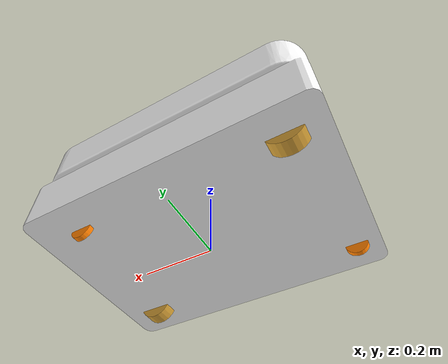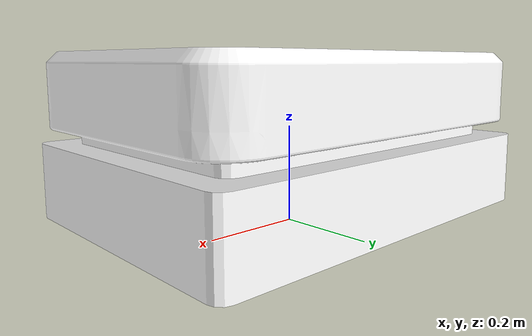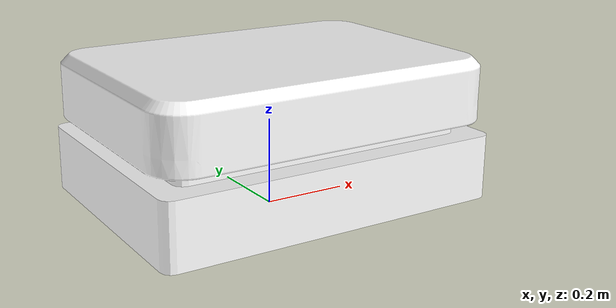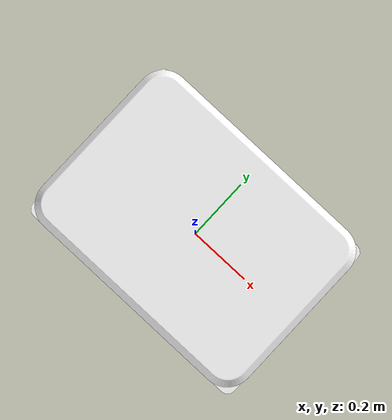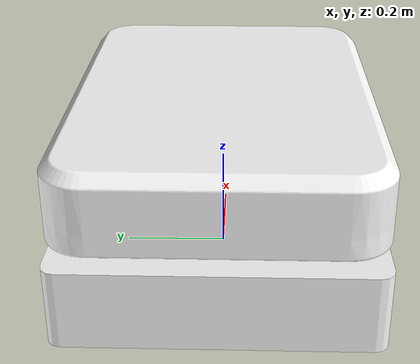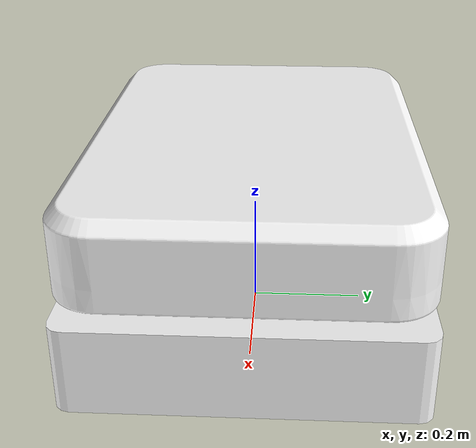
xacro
<?xml version='1.0' encoding='utf-8'?>
<robot xmlns:xacro="http://www.ros.org/wiki/xacro" name="tmr_v02">

<xacro:include filename="$(find franka_description)/robots/tmr_v02/tmr_v02.xacro"/>

  <!--
    DEPRECATION NOTICE
    argument arm_id is no longer supported and will be removed in the future.
    This argument is ignored.
  -->
  <!-- Define arguments -->
  <xacro:arg name="arm_id" default="tmr_v02" />

  <!-- Define arguments -->
  <xacro:arg name="xyz_value" default="0 0 0" />

  <!-- Define arguments -->
  <xacro:arg name="rpy_value" default="0 0 0" />

  <!-- Should self-collision be enabled? -->
  <xacro:arg name="with_sc" default="false" />

  <!-- Is the robot being controlled with ros2_control?" -->
  <xacro:arg name="ros2_control" default="false" />

  <!-- IP address or hostname of the robot" -->
  <xacro:arg name="robot_ip" default="172.16.0.4" />

  <!-- Should a fake hardware be used? -->
  <xacro:arg name="use_fake_hardware" default="false" />

  <!-- Should fake sensors be used? -->
  <xacro:arg name="fake_sensor_commands" default="false" />

  <!-- Prefixes for arm -->
  <xacro:arg name="arm_prefix" default="platform" />

  <link name="base">
  </link>

  <joint name="$(arg arm_prefix)_base" type="fixed">
    <parent link="base"/>
    <child link="base_link"/>
    <origin rpy="$(arg rpy_value)" xyz="$(arg xyz_value)"/>
  </joint>
  <xacro:tmr_v02 mobile_robot_id="$(arg arm_id)"
              robot_ip="$(arg robot_ip)"
              ros2_control="$(arg ros2_control)"
              use_fake_hardware="$(arg use_fake_hardware)"
              fake_sensor_commands="$(arg fake_sensor_commands)"/>

</robot>

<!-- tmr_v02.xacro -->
<robot xmlns:xacro="http://www.ros.org/wiki/xacro">

  <xacro:macro name="tmr_v02"
    params="mobile_robot_id
                  robot_ip:=''
                  ros2_control:=true
                  use_fake_hardware:=false
                  fake_sensor_commands:=false">

    <xacro:include filename="$(find franka_description)/robots/tmr_v02/argo_drive.xacro" />
    <xacro:include filename="$(find franka_description)/robots/tmr_v02/caster_wheel.xacro" />
    <xacro:include filename="$(find franka_description)/robots/tmr_v02/rocker_arm.xacro" />
    <xacro:include filename="$(find franka_description)/robots/tmr_v02/inertia.xacro" />
    <xacro:include filename="$(find franka_description)/robots/tmr_v02/lidar.xacro" />

    <xacro:property name="caster_radius" value="0.03" />
    <xacro:property name="caster_x" value="0.3" />
    <xacro:property name="caster_y" value="0.2" />
    <xacro:property name="caster_z" value="0.08" />

    <xacro:property name="rocker_arm_x" value="-0.3" />
    <xacro:property name="rocker_arm_y" value="0.0" />
    <xacro:property name="rocker_arm_z" value="0.0845" />

    <xacro:property name="argo_drive_radius" value="0.05" />
    <xacro:property name="argo_drive_x" value="0.3" />
    <xacro:property name="argo_drive_y" value="0.2" />
    <xacro:property name="argo_drive_z" value="0.05" />

    <xacro:property name="lidar_x" value="0.3275" />
    <xacro:property name="lidar_y" value="0.2175" />
    <xacro:property name="lidar_z" value="0.19065" />
    <xacro:property name="lidar_pitch" value="${pi}" />
    <xacro:property name="lidar_yaw" value="${pi*3/4}" />

    <!-- Main Platform Chassis -->
    <link name="base_link">
      <visual>
        <origin xyz="0 0 0" rpy="0 0 ${pi}" />
        <geometry>
          <mesh filename="package://franka_description/meshes/tmr_v02/visual/tmr_v02.stl" />
        </geometry>
        <material name="white">
          <color rgba="1.0 1.0 1.0 1.0" />
        </material>
      </visual>
      <collision>
        <origin xyz="0 0 0" rpy="0 0 ${pi}" />
        <geometry>
          <mesh filename="package://franka_description/meshes/tmr_v02/collision/tmr_v02.stl" />
        </geometry>
      </collision>
    </link>
    <link name="base_inertia">
      <inertial>
        <origin xyz="0.006619 -0.002210 0.184355" rpy="0 0 0"/>
        <mass value="88.954183"/>
        <inertia
          ixx="3.245524271774"
          ixy="0.007060314402"
          ixz="-0.134604220439"
          iyy="4.162370636125"
          iyz="-0.010770547630"
          izz="5.841473351812"/>
      </inertial>
    </link>

    <joint name="base_inertia_joint" type="fixed">
      <parent link="base_link" />
      <child link="base_inertia" />
    </joint>

    <!-- wheels and suspension -->
    <!-- front -->
    <xacro:caster_wheel name="caster_front_left" parent="base_link"
      radius="${caster_radius}">
      <origin xyz="${caster_x} ${caster_y} ${caster_z}" />
    </xacro:caster_wheel>
    <xacro:argo_drive name="argo_drive_front" parent="base_link" offset_wheel_sign="1"
      radius="${argo_drive_radius}">
      <origin xyz="${argo_drive_x} ${-argo_drive_y} ${argo_drive_z}" />
    </xacro:argo_drive>

    <!-- rear -->

    <xacro:rocker_arm name="rocker_arm" mass="3" parent="base_link">
          <origin xyz="${rocker_arm_x} ${rocker_arm_y} ${rocker_arm_z}" />
    </xacro:rocker_arm>

    <xacro:caster_wheel name="caster_rear_right" parent="rocker_arm_link"
      radius="${caster_radius}">
      <origin
        xyz="${-caster_x - rocker_arm_x} ${-caster_y - rocker_arm_y} ${caster_z - rocker_arm_z}" />
    </xacro:caster_wheel>

    <xacro:argo_drive name="argo_drive_rear" parent="rocker_arm_link" offset_wheel_sign="-1"
      radius="${argo_drive_radius}">
      <origin
        xyz="${-argo_drive_x - rocker_arm_x} ${argo_drive_y - rocker_arm_y} ${argo_drive_z - rocker_arm_z}" />
    </xacro:argo_drive>

    <!-- lidars -->
    <xacro:lidar name="lidar_front" parent="base_link">
      <origin xyz="${lidar_x} ${lidar_y} ${lidar_z}" rpy="0 ${lidar_pitch} ${lidar_yaw}" />
    </xacro:lidar>
    <xacro:lidar name="lidar_rear" parent="base_link">
      <origin xyz="${-lidar_x} ${-lidar_y} ${lidar_z}" rpy="0 ${lidar_pitch} ${lidar_yaw + pi}" />
    </xacro:lidar>

    <xacro:if value="${ros2_control}">
      <xacro:include filename="$(find franka_description)/robots/tmr_v02/tmr_v02.ros2_control.xacro" />
      <xacro:tmr_v02_ros2_control
        mobile_robot_id="${mobile_robot_id}"
        robot_ip="${robot_ip}"
        use_fake_hardware="${use_fake_hardware}"
        fake_sensor_commands="${fake_sensor_commands}"
      />
    </xacro:if>
  </xacro:macro>
</robot>

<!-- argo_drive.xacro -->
<robot xmlns:xacro="http://www.ros.org/wiki/xacro" >

  <xacro:include filename="$(find franka_description)/robots/tmr_v02/inertia.xacro" />

  <xacro:macro name="argo_drive" params="name parent length:='0.04' radius:='0.05' offset_wheel_sign:='1' *origin">

    <xacro:property name="base_width" value="0.17" />
    <xacro:property name="base_depth" value="0.25" />
    <xacro:property name="base_height" value="0.077" />
    <xacro:property name="offset_wheel" value="0.085" />
    <xacro:property name="mass" value="0.5" />

    <link name="${name}_fixed_link" >
      <xacro:macro name="caster_base_geometry" params="xyz:='0 0 0'">
        <origin xyz="0 ${offset_wheel_sign*(base_depth/2 - offset_wheel)} ${base_height/2 - 0.004}" />
        <geometry>
          <box size="${base_width} ${base_depth} ${base_height}" />
        </geometry>
        <material name="darkgrey">
          <color rgba="0.3 0.3 0.3 1.0"/>
        </material>
      </xacro:macro>

      <visual>
        <xacro:caster_base_geometry/>
      </visual>
      <inertial>
        <origin xyz="-0.00019 ${offset_wheel_sign*0.04522} 0.02947" rpy="0 0 0"/>
        <mass value="11.5"/>
        <inertia
          ixx="0.07060497424"
          ixy="-0.00025482709"
          ixz="${offset_wheel_sign* (-0.00006283102)}"
          iyy="0.03433835031"
          iyz="${offset_wheel_sign*0.00249596715}"
          izz="0.08926325955"/>
      </inertial>
    </link>

    <joint name="${name}_fixed_joint" type="fixed">
      <xacro:insert_block name="origin" />
      <parent link="${parent}" />
      <child  link="${name}_fixed_link" />
    </joint>

    <link name="${name}_steering_link" />

    <joint name="${name}_steering_joint" type="continuous">
      <origin xyz="0 0 0"/>
      <parent link="${name}_fixed_link" />
      <child  link="${name}_steering_link" />
      <axis   xyz="0 0 1" />
      <limit  effort="500" velocity="20" />
      <dynamics damping="0.003" friction="0.0"/>
    </joint>

    <link name="${name}_link" >
      <xacro:macro name="argo_drive_geometry">
        <origin rpy="${pi/2} 0 0" />
        <geometry>
           <cylinder length="${length}" radius="${radius}" />
        </geometry>
        <material name="yellowish_brown">
          <color rgba="0.8 0.6 0.2 1.0"/>
        </material>
      </xacro:macro>

      <visual>
        <xacro:argo_drive_geometry/>
      </visual>
      <collision>
        <xacro:argo_drive_geometry/>
      </collision>

      <xacro:inertia-cylinder mass="${mass}" radius="${radius}" h="${length}" />

    </link>

    <joint name="${name}_joint" type="continuous">
      <origin xyz ="0 0 0" rpy="0 0 0" />
      <parent link="${name}_steering_link" />
      <child  link="${name}_link" />
      <axis   xyz="0 1 0" />
      <limit  effort="500" velocity="20" />
      <dynamics damping="0.003" friction="0.0"/>
    </joint>

  </xacro:macro>

</robot>

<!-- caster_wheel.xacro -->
<robot xmlns:xacro="http://www.ros.org/wiki/xacro" >

  <xacro:include filename="$(find franka_description)/robots/tmr_v02/inertia.xacro" />

  <xacro:macro name="caster_wheel" params="name parent length:='0.015' radius:='0.03' caster_joint_z:='-0.05' caster_steering_offset:='-0.035' *origin">

    <xacro:property name="base_width" value="0.04" />
    <xacro:property name="base_depth" value="0.03" />
    <xacro:property name="base_height" value="0.003" />
    <xacro:property name="mass" value="0.5" />

    <link name="${name}_fixed_link" >
      <xacro:macro name="caster_base_geometry" params="xyz:='0 0 0'">
        <origin xyz="0 0 ${-base_height/2}" />
        <geometry>
          <box size="${base_width} ${base_depth} ${base_height}" />
        </geometry>
        <material name="darkgrey">
          <color rgba="0.3 0.3 0.3 1.0"/>
        </material>
      </xacro:macro>

      <visual>
        <xacro:caster_base_geometry/>
      </visual>
      <inertial>
        <origin xyz="-0.02365 0.00005 -0.03651" rpy="0 0 0"/>
        <mass value="0.7"/>
        <inertia
          ixx="0.00049538079"
          ixy="-0.00000042663"
          ixz="0.00020926011"
          iyy="0.00070424109"
          iyz="-0.00000050221"
          izz="0.00048449394"/>
      </inertial>
    </link>

    <joint name="${name}_fixed_joint" type="fixed">
      <xacro:insert_block name="origin" />
      <parent link="${parent}" />
      <child  link="${name}_fixed_link" />
    </joint>

    <link name="${name}_steering_link" />

    <joint name="${name}_steering_joint" type="continuous">
      <origin xyz="0 0 0"/>
      <parent link="${name}_fixed_link" />
      <child  link="${name}_steering_link" />
      <axis   xyz="0 0 1" />
      <limit  effort="500" velocity="20" />
      <dynamics damping="0.003" friction="0.0"/>
    </joint>

    <link name="${name}_link" >
      <xacro:macro name="caster_wheel_geometry">
        <origin rpy="${pi/2} 0 0" />
        <geometry>
           <cylinder length="${length}" radius="${radius}" />
        </geometry>
        <material name="orange">
          <color rgba="1.0 0.5 0.0 1.0"/>
        </material>
      </xacro:macro>

      <visual>
        <xacro:caster_wheel_geometry/>
      </visual>
      <collision>
        <xacro:caster_wheel_geometry/>
      </collision>

    </link>

    <joint name="${name}_joint" type="continuous">
      <origin xyz ="${caster_steering_offset} 0 ${caster_joint_z}" rpy="0 0 0" />
      <parent link="${name}_steering_link" />
      <child  link="${name}_link" />
      <axis   xyz="0 1 0" />
      <limit  effort="500" velocity="20" />
      <dynamics damping="0.003" friction="0.0"/>
    </joint>

  </xacro:macro>

</robot>

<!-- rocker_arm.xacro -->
<robot xmlns:xacro="http://www.ros.org/wiki/xacro" >

  <xacro:include filename="$(find franka_description)/robots/tmr_v02/inertia.xacro" />

  <xacro:macro name="rocker_arm" params="name mass parent *origin">
    <xacro:property name="depth" value="0.32"/>
    <xacro:property name="width" value="0.02"/>
    <xacro:property name="height" value="0.015"/>

    <link name="${name}_link" >
      <visual>
        <origin rpy="${pi/2} 0 ${pi/2}" />
        <geometry>
          <cylinder radius="${height}" length="${height*1.5}" />
        </geometry>
        <material name="darkgrey">
          <color rgba="0.3 0.3 0.3 1.0"/>
        </material>
      </visual>
      <inertial>
        <origin xyz="-0.000344 -0.021232 0.038239" rpy="0 0 0"/>
        <mass value="5.183973"/>
        <inertia
          ixx="0.077004518565"
          ixy="-0.000040505686"
          ixz="-0.000026300402"
          iyy="0.030693821144"
          iyz="0.002939677599"
          izz="0.083485865094"/>
      </inertial>
    </link>

    <joint name="${name}_joint" type="revolute">
      <xacro:insert_block name="origin" />
      <parent link="${parent}" />
      <child  link="${name}_link" />
      <axis   xyz="1 0 0" />
      <limit  effort="500" velocity="20" upper="0.18" lower="-0.16"/>
      <dynamics damping="0.003" friction="0.0"/>
    </joint>

  </xacro:macro>

</robot>

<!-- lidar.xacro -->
<robot xmlns:xacro="http://www.ros.org/wiki/xacro" >

  <xacro:macro name="lidar" params="name parent min_angle:='${radians(-45)}' max_angle:='${radians(225)}' *origin ">
    <xacro:include filename="$(find franka_description)/robots/tmr_v02/nanoscan3/nanoscan3/nanoscan3_macro.xacro"/>
    <xacro:nanoscan3
      name="${name}"
      parent="${parent}"
      mounting_kit="false"
      ros_topic="/${name}/scan"
      update_rate="50.0"
      min_angle="${min_angle}"
      max_angle="${max_angle}"
      min_range="0.05"
      max_range="10.0"
      gaussian_noise="0.006"
      max_beams="500">
      <xacro:insert_block name="origin" />
    </xacro:nanoscan3>
  </xacro:macro>

</robot>

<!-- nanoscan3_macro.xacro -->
<robot xmlns:xacro="http://wiki.ros.org/xacro">

  <xacro:include filename="$(find franka_description)/robots/tmr_v02/nanoscan3/common.xacro" />
  <xacro:include filename="$(find franka_description)/robots/tmr_v02/nanoscan3/nanoscan3/gazebo_macro.xacro" />

  <!-- joint offsets when mounted on frame -->
  <xacro:property name="base_x" value="0.0803"/>
  <xacro:property name="base_y" value="-0.053"/>

  <xacro:property name="sensor_y" value="${-base_y}"/>
  <xacro:property name="sensor_z" value="0.0315"/>
  <xacro:property name="sensor_rot_z" value="0"/>

  <xacro:macro name="nanoscan3"
    params="
      name
      parent
      mounting_kit
      ros_topic
      update_rate
      min_angle
      max_angle
      min_range
      max_range
      gaussian_noise:=0.006
      max_beams:=540
      *origin
    ">

    <xacro:if value="${mounting_kit}">
      <!-- MOUNT -->
      <joint name="${name}_mount_joint" type="fixed">
        <xacro:insert_block name="origin" />
        <parent link="${parent}" />
        <child link="${name}_mount" />
      </joint>

      <link name="${name}_mount">
        <!-- Default inertial for Gazebo - copy and edit block from 'common.xacro'
            to get more realistic behavior -->
        <xacro:box_inertial x="0.1175" y="0.1006" z="0.05" mass="0.33">
          <origin xyz="0 0 -0.025" rpy="0 0 0"/>
        </xacro:box_inertial>
        <visual>
          <geometry>
            <mesh filename="file://$(find franka_description)/meshes/nanoscan3/MountingKit_2a.dae"/>
          </geometry>
          <material name="black">
            <color rgba="0.0 0.0 0.0 1.0"/>
          </material>
        </visual>
        <collision>
          <geometry>
            <mesh filename="file://$(find franka_description)/meshes/nanoscan3/MountingKit_2a_collision.stl"/>
          </geometry>
        </collision>
      </link>
      <!-- SENSOR BASE when mounted -->
      <joint name="${name}_base_joint" type="fixed">
        <origin xyz="${base_x} ${base_y} 0"/>
        <parent link="${name}_mount" />
        <child link="${name}_base" />
      </joint>
    </xacro:if>

    <xacro:unless value="${mounting_kit}">
      <!-- SENSOR BASE without mount-->
      <joint name="${name}_base_joint" type="fixed">
        <xacro:insert_block name="origin" />
        <parent link="${parent}" />
        <child link="${name}_base" />
      </joint>
    </xacro:unless>

    <link name="${name}_base">
      <origin xyz="${-base_x} ${-base_y} 0"/>
    </link>

  <!-- SENSOR FRAME -->
    <joint name="${name}_joint" type="fixed">
      <parent link="${name}_base" />
      <child link="${name}" />
      <origin xyz="0 0 0" rpy="0 0 ${sensor_rot_z}"/>
    </joint>

    <link name="${name}">
      <!-- Default inertial for Gazebo - copy and edit block from 'common.xacro'
           to get more realistic behavior -->
      <xacro:cylinder_inertial radius="0.43" length="0.03" mass="0.33">
        <origin xyz="0 0 -0.015" rpy="0 0 0"/>
      </xacro:cylinder_inertial>
      <visual>
        <!-- These values were determined empirically -->
        <origin xyz="0 0.07615 ${-sensor_z-0.001}" rpy="0 0 ${radians(-90)}" />
        <geometry>
          <mesh filename="file://$(find franka_description)/meshes/nanoscan3/NANS3.dae"/>
        </geometry>
        <material name="black">
          <color rgba="0.0 0.0 0.0 1.0"/>
        </material>
      </visual>
      <collision>
        <!-- These values were determined empirically -->
        <origin xyz="0 0.07615 ${-sensor_z-0.001}" rpy="0 0 ${radians(-90)}" />
        <geometry>
          <mesh filename="file://$(find franka_description)/meshes/nanoscan3/NANS3_collision.stl"/>
        </geometry>
      </collision>
    </link>

    <!-- gazebo integration -->
    <xacro:sick_safetyscanners2_gazebo
      name="${name}"
      link="${name}"
      ros_topic="${ros_topic}"
      update_rate="${update_rate}"
      min_angle="${min_angle}"
      max_angle="${max_angle}"
      min_range="${min_range}"
      max_range="${max_range}"
      gaussian_noise="${gaussian_noise}"
      max_beams="${max_beams}">
    </xacro:sick_safetyscanners2_gazebo>

  </xacro:macro>
</robot>
